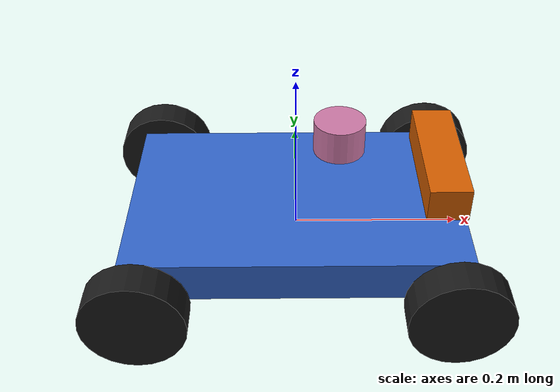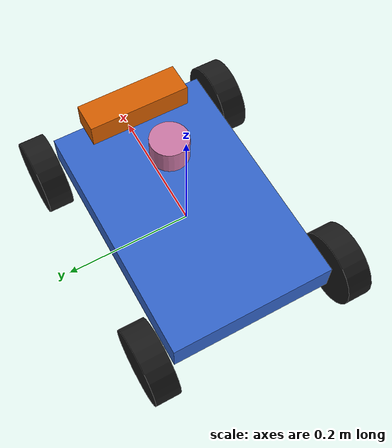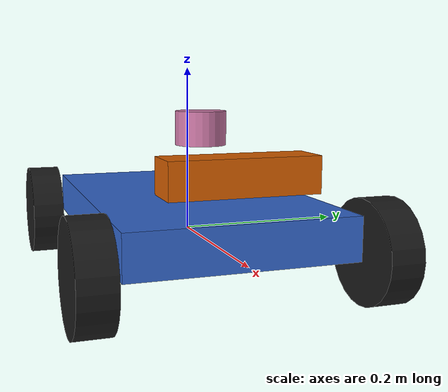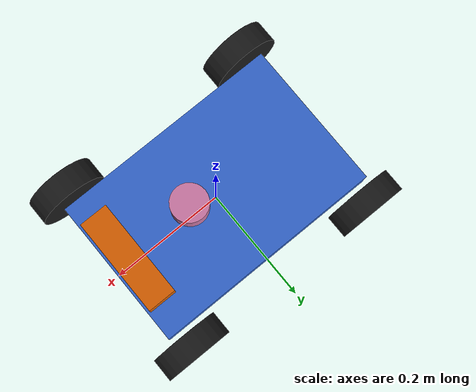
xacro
<?xml version="1.0"?>
<robot name="mi_robot" xmlns:xacro="http://www.ros.org/wiki/xacro">

  <!-- ===================== Parámetros de la variante ===================== -->
  <!-- TODO (Parte 1): reemplace cada ${TODO} por el valor de su variante -->
  <xacro:property name="rueda_radio" value="0.060"/>
  <xacro:property name="distancia_ejes" value="0.36"/>      <!-- wheelbase (m) -->
  <xacro:property name="separacion_ruedas" value="0.32"/>   <!-- track (m) -->
  <xacro:property name="lx" value="${distancia_ejes / 2.0}"/>
  <xacro:property name="ly" value="${separacion_ruedas / 2.0}"/>
  <xacro:property name="rueda_ancho" value="0.04"/>
  <xacro:property name="rueda_masa" value="0.3"/>

  <!-- Chasis (dado) -->
  <xacro:property name="chasis_largo" value="${distancia_ejes + 0.04}"/>
  <xacro:property name="chasis_ancho" value="${separacion_ruedas - rueda_ancho - 0.02}"/>
  <xacro:property name="chasis_alto" value="0.05"/>
  <xacro:property name="chasis_masa" value="3.0"/>

  <!-- ===================== Inercias (dadas) ===================== -->
  <xacro:macro name="inercia_caja" params="m x y z">
    <inertia ixx="${m*(y*y + z*z)/12.0}" ixy="0" ixz="0"
             iyy="${m*(x*x + z*z)/12.0}" iyz="0"
             izz="${m*(x*x + y*y)/12.0}"/>
  </xacro:macro>
  <!-- Cilindro con eje a lo largo de z local -->
  <xacro:macro name="inercia_cilindro" params="m r h">
    <inertia ixx="${m*(3*r*r + h*h)/12.0}" ixy="0" ixz="0"
             iyy="${m*(3*r*r + h*h)/12.0}" iyz="0"
             izz="${m*r*r/2.0}"/>
  </xacro:macro>

  <!-- ===================== Chasis (dado) ===================== -->
  <link name="base_link">
    <visual>
      <origin xyz="0 0 0.02" rpy="0 0 0"/>
      <geometry><box size="${chasis_largo} ${chasis_ancho} ${chasis_alto}"/></geometry>
      <material name="azul"><color rgba="0.2 0.4 0.8 1"/></material>
    </visual>
    <collision>
      <origin xyz="0 0 0.02" rpy="0 0 0"/>
      <geometry><box size="${chasis_largo} ${chasis_ancho} ${chasis_alto}"/></geometry>
    </collision>
    <inertial>
      <origin xyz="0 0 0.02" rpy="0 0 0"/>
      <mass value="${chasis_masa}"/>
      <xacro:inercia_caja m="${chasis_masa}" x="${chasis_largo}" y="${chasis_ancho}" z="${chasis_alto}"/>
    </inertial>
  </link>

  <!-- ===================== Ruedas (Parte 1) ===================== -->
  <xacro:macro name="rueda" params="prefijo x_signo y_signo">
    <link name="rueda_${prefijo}">
      <visual>
        <geometry><cylinder radius="${rueda_radio}" length="${rueda_ancho}"/></geometry>
        <material name="negro"><color rgba="0.1 0.1 0.1 1"/></material>
      </visual>
      <collision>
        <geometry><sphere radius="${rueda_radio}"/></geometry>
      </collision>
      <inertial>
        <mass value="${rueda_masa}"/>
        <xacro:inercia_cilindro m="${rueda_masa}" r="${rueda_radio}" h="${rueda_ancho}"/>
      </inertial>
    </link>
    <joint name="joint_rueda_${prefijo}" type="continuous">
      <parent link="base_link"/>
      <child link="rueda_${prefijo}"/>
      <origin xyz="${lx*x_signo} ${ly*y_signo} 0.0" rpy="-1.5708 0 0"/>
      <axis xyz="0 0 1"/>
    </joint>
  </xacro:macro>

  <xacro:rueda prefijo="del_izq" x_signo="1" y_signo="1"/>
  <xacro:rueda prefijo="del_der" x_signo="1" y_signo="-1"/>
  <xacro:rueda prefijo="tra_izq" x_signo="-1" y_signo="1"/>
  <xacro:rueda prefijo="tra_der" x_signo="-1" y_signo="-1"/>
  <!-- TODO: instanciar del_der, tra_izq y tra_der -->
  <link name="camara_link">
    <visual><geometry><box size="0.048 0.165 0.040"/></geometry></visual>
    <collision><geometry><box size="0.048 0.165 0.040"/></geometry></collision>
 </link>
  <joint name="joint_camara" type="fixed">
    <parent link="base_link"/>
    <child link="camara_link"/>
    <origin xyz="0.17 0 0.09" rpy="0 0 0"/>
  </joint>
  <link name="lidar_link">
    <visual><geometry><cylinder radius="0.03" length="0.04"/></geometry></visual>
    <collision><geometry><cylinder radius="0.038" length="0.041"/></geometry></collision>
    <inertial>
      <mass value="0.019"/>
      <xacro:inercia_cilindro m="${0.019}" r="${0.038}" h="${0.041}"/>
      </inertial>
  </link>
  <joint name="joint_lidar" type="fixed">
    <parent link="base_link"/>
    <child link="lidar_link"/>
    <origin xyz="0.05 0 0.13" rpy="0 0 0"/>
  </joint>
  <!-- ===================== RPLIDAR A3 (Parte 2) ===================== -->
  <!-- TODO: link "lidar_link" (cilindro) con dimensiones y masa de la hoja de datos:
       visual, collision e inertial -->

  <!-- TODO: joint fijo "joint_lidar" base_link -> lidar_link en la posición de su variante -->

  <gazebo reference="lidar_link">
    <sensor name="rplidar_a3" type="gpu_lidar">
      <topic>/scan</topic>
      <gz_frame_id>lidar_link</gz_frame_id>
      <update_rate>10</update_rate>
      <always_on>1</always_on>
      <visualize>true</visualize>
      <lidar>
        <scan>
          <horizontal>
            <samples>1600</samples>          <!-- muestras por vuelta -->
            <resolution>1</resolution>
            <min_angle>-3.1416</min_angle>
            <max_angle>3.1416</max_angle>
          </horizontal>
        </scan>
        <range>
          <min>0.1</min>
          <max>12</max>
          <resolution>0.225</resolution>
        </range>
        <!-- TODO: ruido gaussiano, media 0, desviación 0.01 m -->
      </lidar>
    </sensor>
  </gazebo>

  <!-- ===================== Orbbec Astra (Parte 2) ===================== -->
  <!-- TODO: link "camara_link" (caja) con dimensiones y masa de la hoja de datos -->

  <!-- TODO: joint fijo "joint_camara" base_link -> camara_link en la posición de su variante -->

  <!-- TODO: link "camara_optica_link" y joint fijo "joint_camara_optica" desde
       camara_link con rpy = (-π/2, 0, -π/2) (REP-103) -->

  <gazebo reference="camara_link">
    <sensor name="astra" type="rgbd_camera">
      <topic>/camara</topic>
      <gz_frame_id>camara_link</gz_frame_id>
      <update_rate>20</update_rate>
      <always_on>1</always_on>
      <camera>
        <horizontal_fov>1.019272</horizontal_fov>   <!-- en radianes -->
        <image>
          <width>640</width>
          <height>480</height>
          <format>R8G8B8</format>
        </image>
        <clip>
          <near>0.4</near>
          <far>2</far>
        </clip>
        <depth_camera>
          <clip>
            <near>0.4</near>
            <far>2</far>
          </clip>
        </depth_camera>
      </camera>
    </sensor>
  </gazebo>

  <!-- ===================== Plugins de Gazebo (Parte 1) ===================== -->
  <xacro:macro name="motor" params="prefijo">
    <plugin filename="gz-sim-joint-controller-system" name="gz::sim::systems::JointController">
      <joint_name>joint_rueda_${prefijo}</joint_name>
      <use_force_commands>false</use_force_commands>
      <topic>/vel_rueda_${prefijo}</topic>
    </plugin>
  </xacro:macro>

  <gazebo>
    <xacro:motor prefijo="del_izq"/>
    <xacro:motor prefijo="del_der"/>
    <xacro:motor prefijo="tra_izq"/>
    <xacro:motor prefijo="tra_der"/>
    <!-- TODO: motores de del_der, tra_izq y tra_der -->

    <!-- TODO: plugin gz-sim-joint-state-publisher-system (encoders) -->
    <plugin filename="gz-sim-joint-state-publisher-system"
        name="gz::sim::systems::JointStatePublisher"/>
  </gazebo>

</robot>
